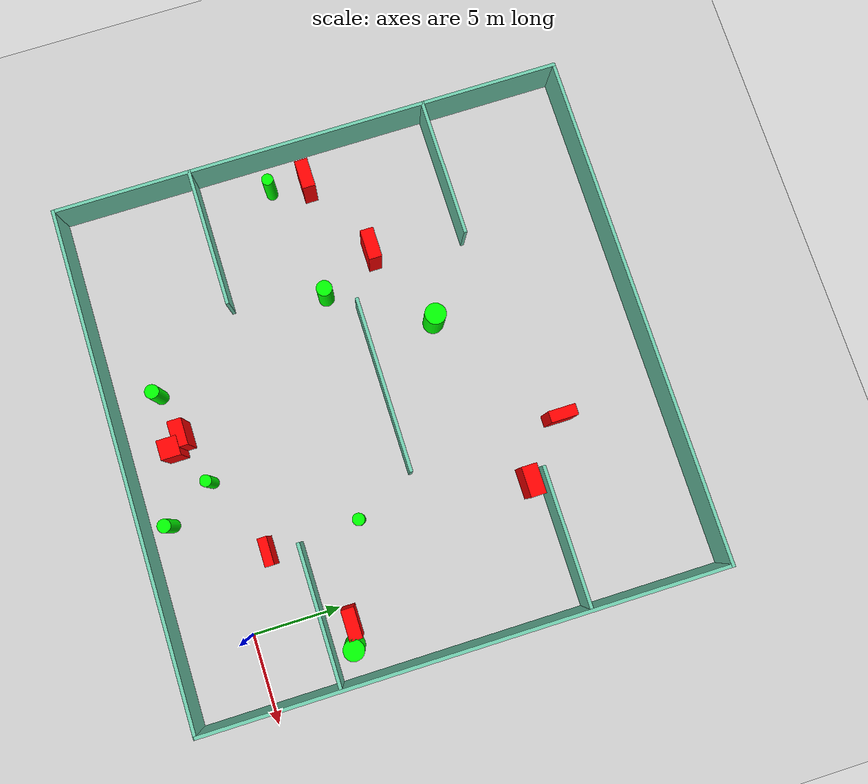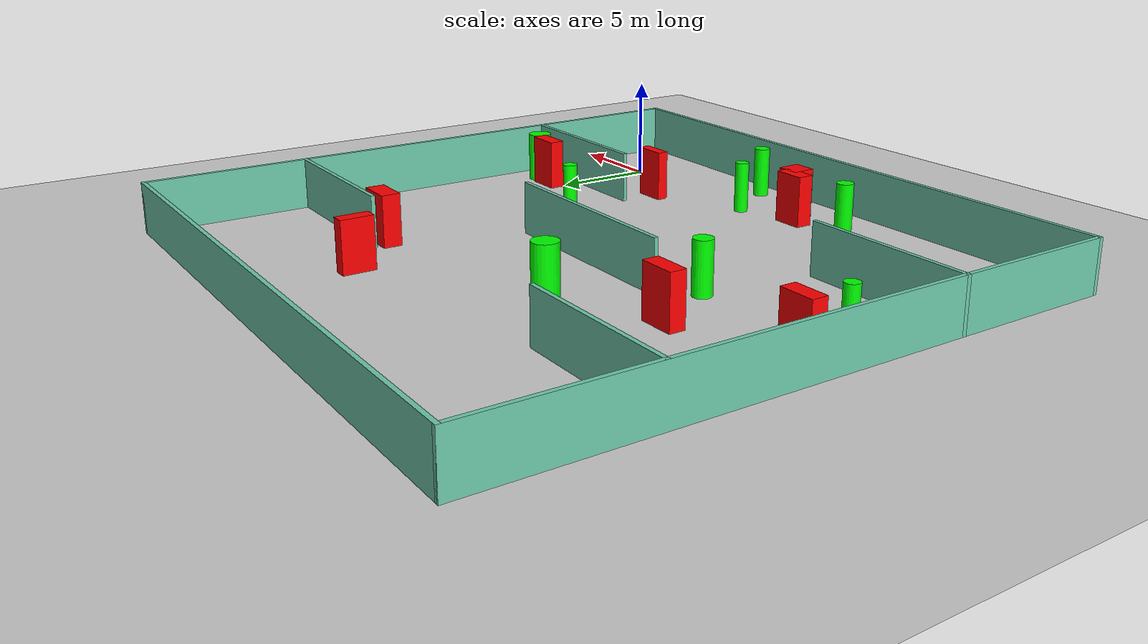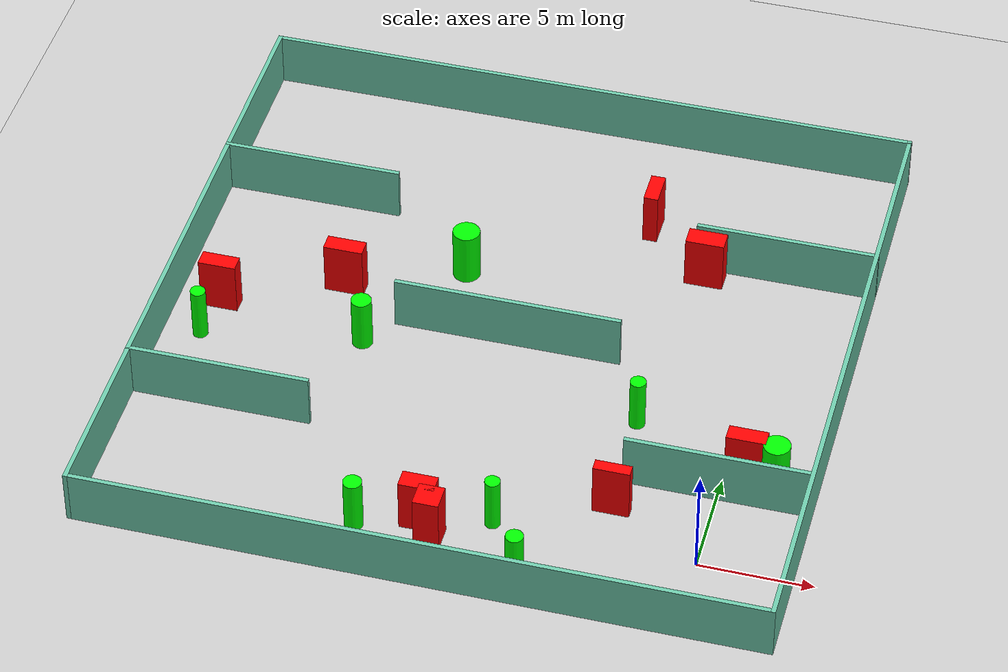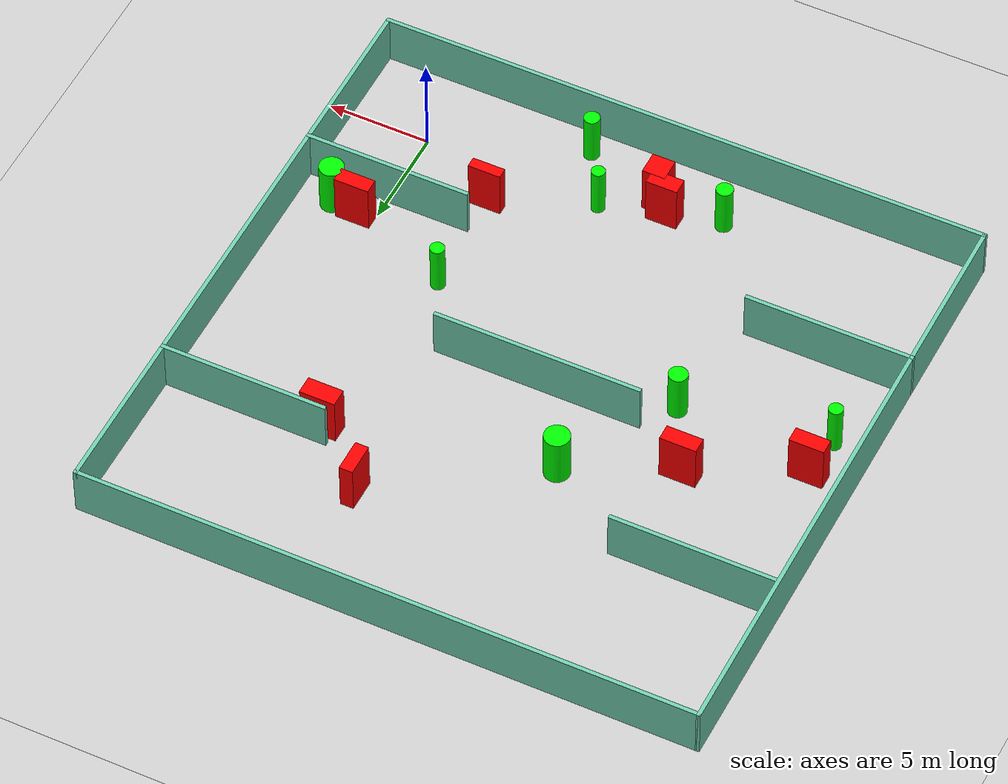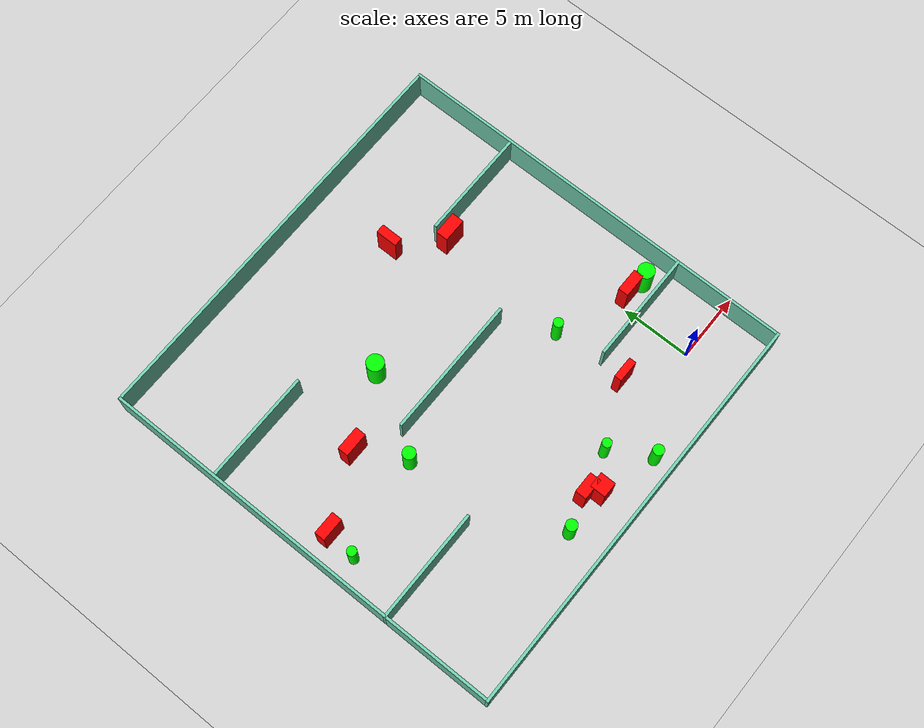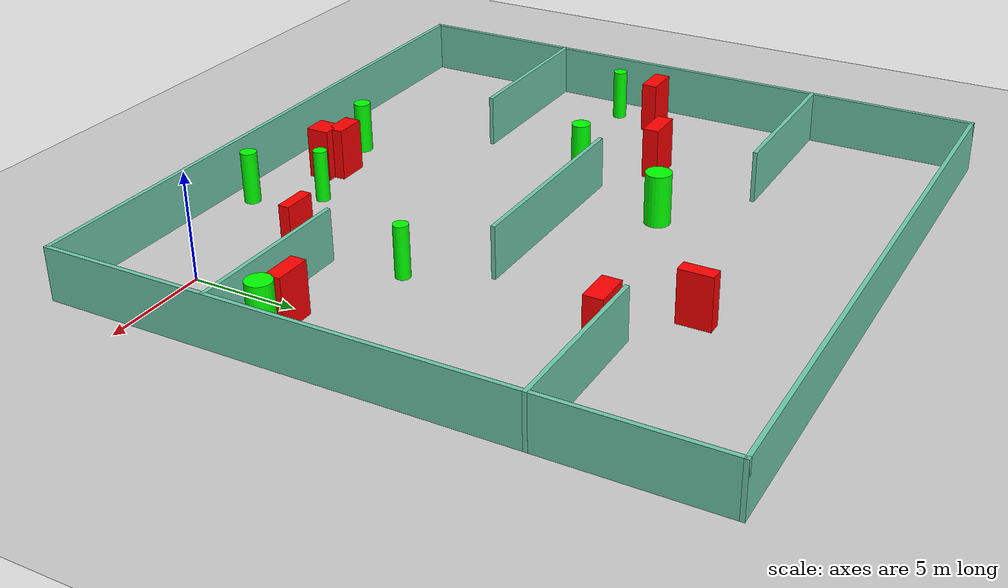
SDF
<sdf version="1.7">
 <world name="default">
  <light name="sun" type="directional">
   <pose>0 0 10 0 -0 0</pose>
   <diffuse>0.8 0.8 0.8 1</diffuse>
   <specular>0.2 0.2 0.2 1</specular>
   <attenuation>
    <range>1000</range>
    <constant>0.9</constant>
    <linear>0.01</linear>
    <quadratic>0.001</quadratic>
   </attenuation>
   <direction>-0.5 0.1 -0.9</direction>
   <spot><inner_angle>0</inner_angle><outer_angle>0</outer_angle><falloff>0</falloff></spot>
  </light>
  <model name="ground_plane">
   <static>1</static>
   <link name="link">
    <collision name="collision">
     <geometry><plane><normal>0 0 1</normal><size>100 100</size></plane></geometry>
     <surface>
      <contact><collide_bitmask>65535</collide_bitmask></contact>
      <friction><ode><mu>100</mu><mu2>50</mu2></ode></friction>
     </surface>
    </collision>
    <visual name="visual">
     <cast_shadows>0</cast_shadows>
     <geometry><plane><normal>0 0 1</normal><size>100 100</size></plane></geometry>
     <material>
      <script><uri>file://media/materials/scripts/gazebo.material</uri><name>Gazebo/Grey</name></script>
     </material>
    </visual>
   </link>
  </model>
  <gravity>0 0 -9.8</gravity>
  <magnetic_field>6e-06 2.3e-05 -4.2e-05</magnetic_field>
  <atmosphere type="adiabatic"/>
  <physics type="ode">
   <max_step_size>0.001</max_step_size>
   <real_time_factor>1</real_time_factor>
   <real_time_update_rate>1000</real_time_update_rate>
  </physics>
  <scene><ambient>0.4 0.4 0.4 1</ambient><background>0.7 0.7 0.7 1</background><shadows>1</shadows></scene>
  <spherical_coordinates>
   <surface_model>EARTH_WGS84</surface_model>
   <latitude_deg>0</latitude_deg>
   <longitude_deg>0</longitude_deg>
   <elevation>0</elevation>
   <heading_deg>0</heading_deg>
  </spherical_coordinates>
  <model name="my_base_walls">
   <link name="Wall_10">
    <collision name="Wall_10_Collision">
     <geometry><box><size>8.2 0.2 2.5</size></box></geometry>
     <pose>0 0 1.25 0 -0 0</pose>
    </collision>
    <visual name="Wall_10_Visual">
     <pose>0 0 1.25 0 -0 0</pose>
     <geometry><box><size>8.2 0.2 2.5</size></box></geometry>
     <material>
      <script><uri>file://media/materials/scripts/gazebo.material</uri><name>Gazebo/Grey</name></script>
      <ambient>0.435294 0.796078 0.67451 1</ambient>
     </material>
     <meta><layer>0</layer></meta>
    </visual>
    <pose>-11 -7 0 0 -0 0</pose>
   </link>
   <link name="Wall_12">
    <collision name="Wall_12_Collision">
     <geometry><box><size>8.2 0.2 2.5</size></box></geometry>
     <pose>0 0 1.25 0 -0 0</pose>
    </collision>
    <visual name="Wall_12_Visual">
     <pose>0 0 1.25 0 -0 0</pose>
     <geometry><box><size>8.2 0.2 2.5</size></box></geometry>
     <material>
      <script><uri>file://media/materials/scripts/gazebo.material</uri><name>Gazebo/Grey</name></script>
      <ambient>0.435294 0.796078 0.67451 1</ambient>
     </material>
     <meta><layer>0</layer></meta>
    </visual>
    <pose>-11 7 0 0 -0 0</pose>
   </link>
   <link name="Wall_14">
    <collision name="Wall_14_Collision">
     <geometry><box><size>8.2 0.2 2.5</size></box></geometry>
     <pose>0 0 1.25 0 -0 0</pose>
    </collision>
    <visual name="Wall_14_Visual">
     <pose>0 0 1.25 0 -0 0</pose>
     <geometry><box><size>8.2 0.2 2.5</size></box></geometry>
     <material>
      <script><uri>file://media/materials/scripts/gazebo.material</uri><name>Gazebo/Grey</name></script>
      <ambient>0.435294 0.796078 0.67451 1</ambient>
     </material>
     <meta><layer>0</layer></meta>
    </visual>
    <pose>11 7 0 0 -0 3.14159</pose>
   </link>
   <link name="Wall_16">
    <collision name="Wall_16_Collision">
     <geometry><box><size>10.2 0.2 2.5</size></box></geometry>
     <pose>0 0 1.25 0 -0 0</pose>
    </collision>
    <visual name="Wall_16_Visual">
     <pose>0 0 1.25 0 -0 0</pose>
     <geometry><box><size>10.2 0.2 2.5</size></box></geometry>
     <material>
      <script><uri>file://media/materials/scripts/gazebo.material</uri><name>Gazebo/Grey</name></script>
      <ambient>0.435294 0.796078 0.67451 1</ambient>
     </material>
     <meta><layer>0</layer></meta>
    </visual>
    <pose>0 0 0 0 -0 3.14159</pose>
   </link>
   <link name="Wall_2">
    <collision name="Wall_2_Collision">
     <geometry><box><size>30.2 0.2 2.5</size></box></geometry>
     <pose>0 0 1.25 0 -0 0</pose>
    </collision>
    <visual name="Wall_2_Visual">
     <pose>0 0 1.25 0 -0 0</pose>
     <geometry><box><size>30.2 0.2 2.5</size></box></geometry>
     <material>
      <script><uri>file://media/materials/scripts/gazebo.material</uri><name>Gazebo/Grey</name></script>
      <ambient>0.435294 0.796078 0.67451 1</ambient>
     </material>
     <meta><layer>0</layer></meta>
    </visual>
    <pose>0 -15 0 0 -0 3.14159</pose>
   </link>
   <link name="Wall_3">
    <collision name="Wall_3_Collision">
     <geometry><box><size>30.2 0.2 2.5</size></box></geometry>
     <pose>0 0 1.25 0 -0 0</pose>
    </collision>
    <visual name="Wall_3_Visual">
     <pose>0 0 1.25 0 -0 0</pose>
     <geometry><box><size>30.2 0.2 2.5</size></box></geometry>
     <material>
      <script><uri>file://media/materials/scripts/gazebo.material</uri><name>Gazebo/Grey</name></script>
      <ambient>0.435294 0.796078 0.67451 1</ambient>
     </material>
     <meta><layer>0</layer></meta>
    </visual>
    <pose>-15 0 0 0 -0 1.5708</pose>
   </link>
   <link name="Wall_4">
    <collision name="Wall_4_Collision">
     <geometry><box><size>30.2 0.2 2.5</size></box></geometry>
     <pose>0 0 1.25 0 -0 0</pose>
    </collision>
    <visual name="Wall_4_Visual">
     <pose>0 0 1.25 0 -0 0</pose>
     <geometry><box><size>30.2 0.2 2.5</size></box></geometry>
     <material>
      <script><uri>file://media/materials/scripts/gazebo.material</uri><name>Gazebo/Grey</name></script>
      <ambient>0.435294 0.796078 0.67451 1</ambient>
     </material>
     <meta><layer>0</layer></meta>
    </visual>
    <pose>0 15 0 0 -0 0</pose>
   </link>
   <link name="Wall_6">
    <collision name="Wall_6_Collision">
     <geometry><box><size>30.2 0.2 2.5</size></box></geometry>
     <pose>0 0 1.25 0 -0 0</pose>
    </collision>
    <visual name="Wall_6_Visual">
     <pose>0 0 1.25 0 -0 0</pose>
     <geometry><box><size>30.2 0.2 2.5</size></box></geometry>
     <material>
      <script><uri>file://media/materials/scripts/gazebo.material</uri><name>Gazebo/Grey</name></script>
      <ambient>0.435294 0.796078 0.67451 1</ambient>
     </material>
     <meta><layer>0</layer></meta>
    </visual>
    <pose>15 0 0 0 -0 1.5708</pose>
   </link>
   <link name="Wall_8">
    <collision name="Wall_8_Collision">
     <geometry><box><size>8.2 0.2 2.5</size></box></geometry>
     <pose>0 0 1.25 0 -0 0</pose>
    </collision>
    <visual name="Wall_8_Visual">
     <pose>0 0 1.25 0 -0 0</pose>
     <geometry><box><size>8.2 0.2 2.5</size></box></geometry>
     <material>
      <script><uri>file://media/materials/scripts/gazebo.material</uri><name>Gazebo/Grey</name></script>
      <ambient>0.435294 0.796078 0.67451 1</ambient>
     </material>
     <meta><layer>0</layer></meta>
    </visual>
    <pose>11 -7 0 0 -0 3.14159</pose>
   </link>
   <static>1</static>
   <pose>-11 11 0 0 -0 0</pose>
  </model>
  <model name="cylinder1">
   <static>1</static>
   <link name="link">
    <inertial>
     <mass>1</mass>
     <inertia><ixx>0.5</ixx><ixy>0</ixy><ixz>0</ixz><iyy>0.5</iyy><iyz>0</iyz><izz>1</izz></inertia>
    </inertial>
    <collision name="collision">
     <geometry><cylinder><radius>0.3869389845099751</radius><length>2.5</length></cylinder></geometry>
    </collision>
    <visual name="visual">
     <geometry><cylinder><radius>0.3869389845099751</radius><length>2.5</length></cylinder></geometry>
     <material>
      <ambient>0 1 0 1</ambient>
      <diffuse>0 1 0 1</diffuse>
      <specular>0.1 0.1 0.1 1</specular>
      <emissive>0 0 0 0</emissive>
     </material>
    </visual>
   </link>
   <pose>-7.088798210279421 -2.6446800147506817 1.25 0 0 0</pose>
  </model>
  <model name="cylinder2">
   <static>1</static>
   <link name="link">
    <inertial>
     <mass>1</mass>
     <inertia><ixx>0.5</ixx><ixy>0</ixy><ixz>0</ixz><iyy>0.5</iyy><iyz>0</iyz><izz>1</izz></inertia>
    </inertial>
    <collision name="collision">
     <geometry><cylinder><radius>0.35035322302371996</radius><length>2.5</length></cylinder></geometry>
    </collision>
    <visual name="visual">
     <geometry><cylinder><radius>0.35035322302371996</radius><length>2.5</length></cylinder></geometry>
     <material>
      <ambient>0 1 0 1</ambient>
      <diffuse>0 1 0 1</diffuse>
      <specular>0.1 0.1 0.1 1</specular>
      <emissive>0 0 0 0</emissive>
     </material>
    </visual>
   </link>
   <pose>-4.309930009007434 7.505629514134597 1.25 0 0 0</pose>
  </model>
  <model name="cylinder3">
   <static>1</static>
   <link name="link">
    <inertial>
     <mass>1</mass>
     <inertia><ixx>0.5</ixx><ixy>0</ixy><ixz>0</ixz><iyy>0.5</iyy><iyz>0</iyz><izz>1</izz></inertia>
    </inertial>
    <collision name="collision">
     <geometry><cylinder><radius>0.5915819453083041</radius><length>2.5</length></cylinder></geometry>
    </collision>
    <visual name="visual">
     <geometry><cylinder><radius>0.5915819453083041</radius><length>2.5</length></cylinder></geometry>
     <material>
      <ambient>0 1 0 1</ambient>
      <diffuse>0 1 0 1</diffuse>
      <specular>0.1 0.1 0.1 1</specular>
      <emissive>0 0 0 0</emissive>
     </material>
    </visual>
   </link>
   <pose>2.1995127051913315 5.248330555226987 1.25 0 0 0</pose>
  </model>
  <model name="cylinder4">
   <static>1</static>
   <link name="link">
    <inertial>
     <mass>1</mass>
     <inertia><ixx>0.5</ixx><ixy>0</ixy><ixz>0</ixz><iyy>0.5</iyy><iyz>0</iyz><izz>1</izz></inertia>
    </inertial>
    <collision name="collision">
     <geometry><cylinder><radius>0.4077220433974221</radius><length>2.5</length></cylinder></geometry>
    </collision>
    <visual name="visual">
     <geometry><cylinder><radius>0.4077220433974221</radius><length>2.5</length></cylinder></geometry>
     <material>
      <ambient>0 1 0 1</ambient>
      <diffuse>0 1 0 1</diffuse>
      <specular>0.1 0.1 0.1 1</specular>
      <emissive>0 0 0 0</emissive>
     </material>
    </visual>
   </link>
   <pose>-14.373771257528366 -1.3506183645675507 1.25 0 0 0</pose>
  </model>
  <model name="cylinder5">
   <static>1</static>
   <link name="link">
    <inertial>
     <mass>1</mass>
     <inertia><ixx>0.5</ixx><ixy>0</ixy><ixz>0</ixz><iyy>0.5</iyy><iyz>0</iyz><izz>1</izz></inertia>
    </inertial>
    <collision name="collision">
     <geometry><cylinder><radius>0.33551217074925904</radius><length>2.5</length></cylinder></geometry>
    </collision>
    <visual name="visual">
     <geometry><cylinder><radius>0.33551217074925904</radius><length>2.5</length></cylinder></geometry>
     <material>
      <ambient>0 1 0 1</ambient>
      <diffuse>0 1 0 1</diffuse>
      <specular>0.1 0.1 0.1 1</specular>
      <emissive>0 0 0 0</emissive>
     </material>
    </visual>
   </link>
   <pose>-8.767700067581202 0.16268554391838297 1.25 0 0 0</pose>
  </model>
  <model name="cylinder6">
   <static>1</static>
   <link name="link">
    <inertial>
     <mass>1</mass>
     <inertia><ixx>0.5</ixx><ixy>0</ixy><ixz>0</ixz><iyy>0.5</iyy><iyz>0</iyz><izz>1</izz></inertia>
    </inertial>
    <collision name="collision">
     <geometry><cylinder><radius>0.45731763261198344</radius><length>2.5</length></cylinder></geometry>
    </collision>
    <visual name="visual">
     <geometry><cylinder><radius>0.45731763261198344</radius><length>2.5</length></cylinder></geometry>
     <material>
      <ambient>0 1 0 1</ambient>
      <diffuse>0 1 0 1</diffuse>
      <specular>0.1 0.1 0.1 1</specular>
      <emissive>0 0 0 0</emissive>
     </material>
    </visual>
   </link>
   <pose>-17.16145577167841 9.422700826165357 1.25 0 0 0</pose>
  </model>
  <model name="cylinder7">
   <static>1</static>
   <link name="link">
    <inertial>
     <mass>1</mass>
     <inertia><ixx>0.5</ixx><ixy>0</ixy><ixz>0</ixz><iyy>0.5</iyy><iyz>0</iyz><izz>1</izz></inertia>
    </inertial>
    <collision name="collision">
     <geometry><cylinder><radius>0.6173421413402831</radius><length>2.5</length></cylinder></geometry>
    </collision>
    <visual name="visual">
     <geometry><cylinder><radius>0.6173421413402831</radius><length>2.5</length></cylinder></geometry>
     <material>
      <ambient>0 1 0 1</ambient>
      <diffuse>0 1 0 1</diffuse>
      <specular>0.1 0.1 0.1 1</specular>
      <emissive>0 0 0 0</emissive>
     </material>
    </visual>
   </link>
   <pose>-13.913619976439335 14.942438606506649 1.25 0 0 0</pose>
  </model>
  <model name="cylinder8">
   <static>1</static>
   <link name="link">
    <inertial>
     <mass>1</mass>
     <inertia><ixx>0.5</ixx><ixy>0</ixy><ixz>0</ixz><iyy>0.5</iyy><iyz>0</iyz><izz>1</izz></inertia>
    </inertial>
    <collision name="collision">
     <geometry><cylinder><radius>0.3409098273897493</radius><length>2.5</length></cylinder></geometry>
    </collision>
    <visual name="visual">
     <geometry><cylinder><radius>0.3409098273897493</radius><length>2.5</length></cylinder></geometry>
     <material>
      <ambient>0 1 0 1</ambient>
      <diffuse>0 1 0 1</diffuse>
      <specular>0.1 0.1 0.1 1</specular>
      <emissive>0 0 0 0</emissive>
     </material>
    </visual>
   </link>
   <pose>-24.224505845557182 8.162720132907502 1.25 0 0 0</pose>
  </model>
  <model name="box1">
   <static>1</static>
   <link name="link">
    <inertial>
     <mass>1</mass>
     <inertia><ixx>0.083</ixx><ixy>0</ixy><ixz>0</ixz><iyy>0.083</iyy><iyz>0</iyz><izz>0.083</izz></inertia>
    </inertial>
    <collision name="collision">
     <geometry><box><size>1.7164163585610464 0.7445937886927081 2.5</size></box></geometry>
    </collision>
    <visual name="visual">
     <geometry><box><size>1.7164163585610464 0.7445937886927081 2.5</size></box></geometry>
     <material>
      <ambient>1 0 0 1</ambient>
      <diffuse>1 0 0 1</diffuse>
      <specular>0.1 0.1 0.1 1</specular>
      <emissive>0 0 0 0</emissive>
     </material>
    </visual>
    <sensor name="my_contact" type="contact">
     <contact><collision>box_collision</collision><topic>__default_topic__</topic></contact>
    </sensor>
   </link>
   <pose>0.8746659532640741 5.526093438265827 1.25 0 0 0</pose>
  </model>
  <model name="box2">
   <static>1</static>
   <link name="link">
    <inertial>
     <mass>1</mass>
     <inertia><ixx>0.083</ixx><ixy>0</ixy><ixz>0</ixz><iyy>0.083</iyy><iyz>0</iyz><izz>0.083</izz></inertia>
    </inertial>
    <collision name="collision">
     <geometry><box><size>1.6869606685089182 0.7609598890738853 2.5</size></box></geometry>
    </collision>
    <visual name="visual">
     <geometry><box><size>1.6869606685089182 0.7609598890738853 2.5</size></box></geometry>
     <material>
      <ambient>1 0 0 1</ambient>
      <diffuse>1 0 0 1</diffuse>
      <specular>0.1 0.1 0.1 1</specular>
      <emissive>0 0 0 0</emissive>
     </material>
    </visual>
    <sensor name="my_contact" type="contact">
     <contact><collision>box_collision</collision><topic>__default_topic__</topic></contact>
    </sensor>
   </link>
   <pose>-23.94646089826978 10.303820639184698 1.25 0 0 0</pose>
  </model>
  <model name="box3">
   <static>1</static>
   <link name="link">
    <inertial>
     <mass>1</mass>
     <inertia><ixx>0.083</ixx><ixy>0</ixy><ixz>0</ixz><iyy>0.083</iyy><iyz>0</iyz><izz>0.083</izz></inertia>
    </inertial>
    <collision name="collision">
     <geometry><box><size>1.547574303164647 0.8156773873722488 2.5</size></box></geometry>
    </collision>
    <visual name="visual">
     <geometry><box><size>1.547574303164647 0.8156773873722488 2.5</size></box></geometry>
     <material>
      <ambient>1 0 0 1</ambient>
      <diffuse>1 0 0 1</diffuse>
      <specular>0.1 0.1 0.1 1</specular>
      <emissive>0 0 0 0</emissive>
     </material>
    </visual>
    <sensor name="my_contact" type="contact">
     <contact><collision>box_collision</collision><topic>__default_topic__</topic></contact>
    </sensor>
   </link>
   <pose>-11.743662789873008 -0.6135863543451845 1.25 0 0 0</pose>
  </model>
  <model name="box4">
   <static>1</static>
   <link name="link">
    <inertial>
     <mass>1</mass>
     <inertia><ixx>0.083</ixx><ixy>0</ixy><ixz>0</ixz><iyy>0.083</iyy><iyz>0</iyz><izz>0.083</izz></inertia>
    </inertial>
    <collision name="collision">
     <geometry><box><size>1.7349016895921248 0.8939602406654934 2.5</size></box></geometry>
    </collision>
    <visual name="visual">
     <geometry><box><size>1.7349016895921248 0.8939602406654934 2.5</size></box></geometry>
     <material>
      <ambient>1 0 0 1</ambient>
      <diffuse>1 0 0 1</diffuse>
      <specular>0.1 0.1 0.1 1</specular>
      <emissive>0 0 0 0</emissive>
     </material>
    </visual>
    <sensor name="my_contact" type="contact">
     <contact><collision>box_collision</collision><topic>__default_topic__</topic></contact>
    </sensor>
   </link>
   <pose>-3.50137358830667 17.236301767470852 1.25 0 0 0</pose>
  </model>
  <model name="box5">
   <static>1</static>
   <link name="link">
    <inertial>
     <mass>1</mass>
     <inertia><ixx>0.083</ixx><ixy>0</ixy><ixz>0</ixz><iyy>0.083</iyy><iyz>0</iyz><izz>0.083</izz></inertia>
    </inertial>
    <collision name="collision">
     <geometry><box><size>1.7683015215190594 0.7779527308039187 2.5</size></box></geometry>
    </collision>
    <visual name="visual">
     <geometry><box><size>1.7683015215190594 0.7779527308039187 2.5</size></box></geometry>
     <material>
      <ambient>1 0 0 1</ambient>
      <diffuse>1 0 0 1</diffuse>
      <specular>0.1 0.1 0.1 1</specular>
      <emissive>0 0 0 0</emissive>
     </material>
    </visual>
    <sensor name="my_contact" type="contact">
     <contact><collision>box_collision</collision><topic>__default_topic__</topic></contact>
    </sensor>
   </link>
   <pose>-18.86929635226038 12.69862943382869 1.25 0 0 0</pose>
  </model>
  <model name="box6">
   <static>1</static>
   <link name="link">
    <inertial>
     <mass>1</mass>
     <inertia><ixx>0.083</ixx><ixy>0</ixy><ixz>0</ixz><iyy>0.083</iyy><iyz>0</iyz><izz>0.083</izz></inertia>
    </inertial>
    <collision name="collision">
     <geometry><box><size>1.6012353319275867 0.5315576611498083 2.5</size></box></geometry>
    </collision>
    <visual name="visual">
     <geometry><box><size>1.6012353319275867 0.5315576611498083 2.5</size></box></geometry>
     <material>
      <ambient>1 0 0 1</ambient>
      <diffuse>1 0 0 1</diffuse>
      <specular>0.1 0.1 0.1 1</specular>
      <emissive>0 0 0 0</emissive>
     </material>
    </visual>
    <sensor name="my_contact" type="contact">
     <contact><collision>box_collision</collision><topic>__default_topic__</topic></contact>
    </sensor>
   </link>
   <pose>-4.140881068173613 2.2140862948094817 1.25 0 0 0</pose>
  </model>
  <model name="box7">
   <static>1</static>
   <link name="link">
    <inertial>
     <mass>1</mass>
     <inertia><ixx>0.083</ixx><ixy>0</ixy><ixz>0</ixz><iyy>0.083</iyy><iyz>0</iyz><izz>0.083</izz></inertia>
    </inertial>
    <collision name="collision">
     <geometry><box><size>1.1231459531442995 1.1355895852989142 2.5</size></box></geometry>
    </collision>
    <visual name="visual">
     <geometry><box><size>1.1231459531442995 1.1355895852989142 2.5</size></box></geometry>
     <material>
      <ambient>1 0 0 1</ambient>
      <diffuse>1 0 0 1</diffuse>
      <specular>0.1 0.1 0.1 1</specular>
      <emissive>0 0 0 0</emissive>
     </material>
    </visual>
    <sensor name="my_contact" type="contact">
     <contact><collision>box_collision</collision><topic>__default_topic__</topic></contact>
    </sensor>
   </link>
   <pose>-11.106539341017015 -1.2951795318392247 1.25 0 0 0</pose>
  </model>
  <model name="box8">
   <static>1</static>
   <link name="link">
    <inertial>
     <mass>1</mass>
     <inertia><ixx>0.083</ixx><ixy>0</ixy><ixz>0</ixz><iyy>0.083</iyy><iyz>0</iyz><izz>0.083</izz></inertia>
    </inertial>
    <collision name="collision">
     <geometry><box><size>0.6553363629671916 1.5774474597904335 2.5</size></box></geometry>
    </collision>
    <visual name="visual">
     <geometry><box><size>0.6553363629671916 1.5774474597904335 2.5</size></box></geometry>
     <material>
      <ambient>1 0 0 1</ambient>
      <diffuse>1 0 0 1</diffuse>
      <specular>0.1 0.1 0.1 1</specular>
      <emissive>0 0 0 0</emissive>
     </material>
    </visual>
    <sensor name="my_contact" type="contact">
     <contact><collision>box_collision</collision><topic>__default_topic__</topic></contact>
    </sensor>
   </link>
   <pose>-6.504612997502441 19.956756556162958 1.25 0 0 0</pose>
  </model>
 </world>
</sdf>
